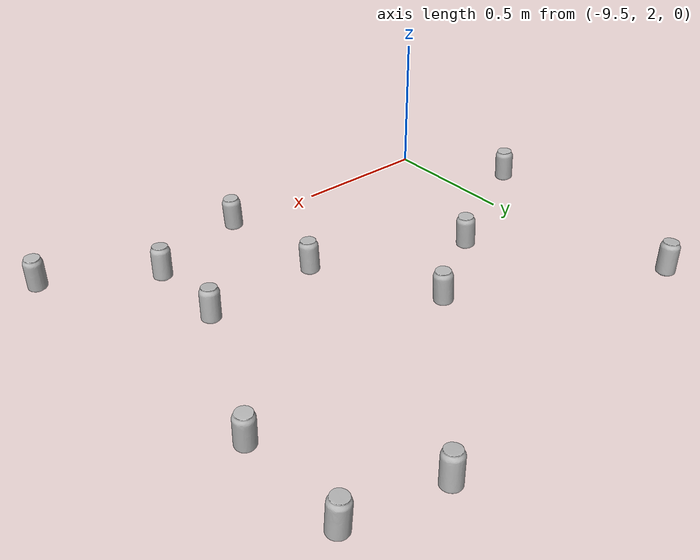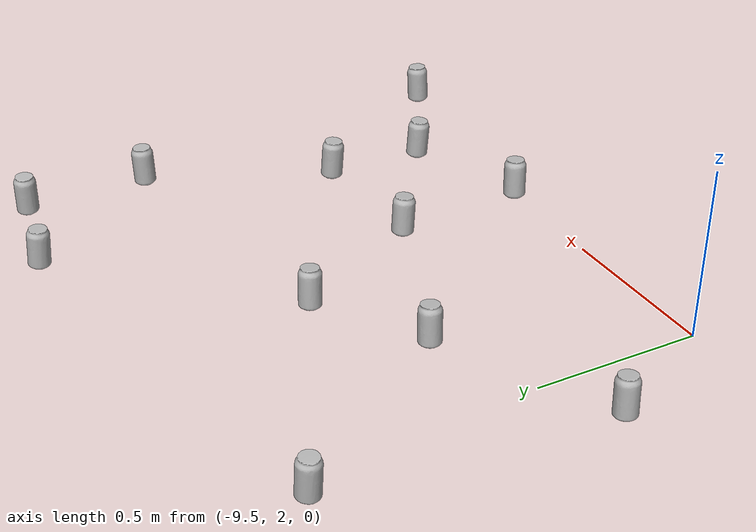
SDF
<sdf version="1.6">
 <world name="default">
  <model name="coke_can20">
   <link name="link">
    <inertial>
     <pose>0 0 0.06 0 -0 0</pose>
     <mass>0.39</mass>
     <inertia>
      <ixx>0.00055575</ixx>
      <ixy>0</ixy>
      <ixz>0</ixz>
      <iyy>0.00055575</iyy>
      <iyz>0</iyz>
      <izz>0.0001755</izz>
     </inertia>
    </inertial>
    <collision name="collision">
     <pose>0.003937 0.004724 -0.18 0 -0 0</pose>
     <geometry><mesh><uri>model://coke_can/meshes/coke_can.dae</uri></mesh></geometry>
     <surface>
      <friction><ode><mu>1</mu><mu2>1</mu2></ode></friction>
      <contact>
       <ode><kp>1e+07</kp><kd>1</kd><min_depth>0.001</min_depth><max_vel>0.1</max_vel></ode>
       <collide_bitmask>256</collide_bitmask>
      </contact>
     </surface>
    </collision>
    <visual name="visual">
     <pose>0.003937 0.004724 -0.18 0 -0 0</pose>
     <geometry><mesh><uri>model://coke_can/meshes/coke_can.dae</uri></mesh></geometry>
    </visual>
   </link>
   <pose>-7.91158 1.9156 -0.002658 -0.055084 0.007762 -0.558571</pose>
  </model>
  <model name="coke_can177">
   <link name="link">
    <inertial>
     <pose>0 0 0.06 0 -0 0</pose>
     <mass>0.39</mass>
     <inertia>
      <ixx>0.00055575</ixx>
      <ixy>0</ixy>
      <ixz>0</ixz>
      <iyy>0.00055575</iyy>
      <iyz>0</iyz>
      <izz>0.0001755</izz>
     </inertia>
    </inertial>
    <collision name="collision">
     <pose>0.003937 0.004724 -0.18 0 -0 0</pose>
     <geometry><mesh><uri>model://coke_can/meshes/coke_can.dae</uri></mesh></geometry>
     <surface>
      <friction><ode><mu>1</mu><mu2>1</mu2></ode></friction>
      <contact>
       <ode><kp>1e+07</kp><kd>1</kd><min_depth>0.001</min_depth><max_vel>0.1</max_vel></ode>
       <collide_bitmask>256</collide_bitmask>
      </contact>
     </surface>
    </collision>
    <visual name="visual">
     <pose>0.003937 0.004724 -0.18 0 -0 0</pose>
     <geometry><mesh><uri>model://coke_can/meshes/coke_can.dae</uri></mesh></geometry>
    </visual>
   </link>
   <pose>-8.34661 3.42985 -0.002659 -0.055087 0.007758 2.46031</pose>
  </model>
  <model name="coke_can300">
   <link name="link">
    <inertial>
     <pose>0 0 0.06 0 -0 0</pose>
     <mass>0.39</mass>
     <inertia>
      <ixx>0.00055575</ixx>
      <ixy>0</ixy>
      <ixz>0</ixz>
      <iyy>0.00055575</iyy>
      <iyz>0</iyz>
      <izz>0.0001755</izz>
     </inertia>
    </inertial>
    <collision name="collision">
     <pose>0.003937 0.004724 -0.18 0 -0 0</pose>
     <geometry><mesh><uri>model://coke_can/meshes/coke_can.dae</uri></mesh></geometry>
     <surface>
      <friction><ode><mu>1</mu><mu2>1</mu2></ode></friction>
      <contact>
       <ode><kp>1e+07</kp><kd>1</kd><min_depth>0.001</min_depth><max_vel>0.1</max_vel></ode>
       <collide_bitmask>256</collide_bitmask>
      </contact>
     </surface>
    </collision>
    <visual name="visual">
     <pose>0.003937 0.004724 -0.18 0 -0 0</pose>
     <geometry><mesh><uri>model://coke_can/meshes/coke_can.dae</uri></mesh></geometry>
    </visual>
   </link>
   <pose>-9.69604 2.37278 -0.002659 -0.055118 0.007738 -1.53069</pose>
  </model>
  <model name="coke_can321">
   <link name="link">
    <inertial>
     <pose>0 0 0.06 0 -0 0</pose>
     <mass>0.39</mass>
     <inertia>
      <ixx>0.00055575</ixx>
      <ixy>0</ixy>
      <ixz>0</ixz>
      <iyy>0.00055575</iyy>
      <iyz>0</iyz>
      <izz>0.0001755</izz>
     </inertia>
    </inertial>
    <collision name="collision">
     <pose>0.003937 0.004724 -0.18 0 -0 0</pose>
     <geometry><mesh><uri>model://coke_can/meshes/coke_can.dae</uri></mesh></geometry>
     <surface>
      <friction><ode><mu>1</mu><mu2>1</mu2></ode></friction>
      <contact>
       <ode><kp>1e+07</kp><kd>1</kd><min_depth>0.001</min_depth><max_vel>0.1</max_vel></ode>
       <collide_bitmask>256</collide_bitmask>
      </contact>
     </surface>
    </collision>
    <visual name="visual">
     <pose>0.003937 0.004724 -0.18 0 -0 0</pose>
     <geometry><mesh><uri>model://coke_can/meshes/coke_can.dae</uri></mesh></geometry>
    </visual>
   </link>
   <pose>-8.26214 2.43891 -0.002659 -0.055086 0.007759 2.76838</pose>
  </model>
  <model name="coke_can361">
   <link name="link">
    <inertial>
     <pose>0 0 0.06 0 -0 0</pose>
     <mass>0.39</mass>
     <inertia>
      <ixx>0.00055575</ixx>
      <ixy>0</ixy>
      <ixz>0</ixz>
      <iyy>0.00055575</iyy>
      <iyz>0</iyz>
      <izz>0.0001755</izz>
     </inertia>
    </inertial>
    <collision name="collision">
     <pose>0.003937 0.004724 -0.18 0 -0 0</pose>
     <geometry><mesh><uri>model://coke_can/meshes/coke_can.dae</uri></mesh></geometry>
     <surface>
      <friction><ode><mu>1</mu><mu2>1</mu2></ode></friction>
      <contact>
       <ode><kp>1e+07</kp><kd>1</kd><min_depth>0.001</min_depth><max_vel>0.1</max_vel></ode>
       <collide_bitmask>256</collide_bitmask>
      </contact>
     </surface>
    </collision>
    <visual name="visual">
     <pose>0.003937 0.004724 -0.18 0 -0 0</pose>
     <geometry><mesh><uri>model://coke_can/meshes/coke_can.dae</uri></mesh></geometry>
    </visual>
   </link>
   <pose>-8.03239 3.36158 -0.002659 -0.055095 0.007753 1.1431</pose>
  </model>
  <model name="coke_can402">
   <link name="link">
    <inertial>
     <pose>0 0 0.06 0 -0 0</pose>
     <mass>0.39</mass>
     <inertia>
      <ixx>0.00055575</ixx>
      <ixy>0</ixy>
      <ixz>0</ixz>
      <iyy>0.00055575</iyy>
      <iyz>0</iyz>
      <izz>0.0001755</izz>
     </inertia>
    </inertial>
    <collision name="collision">
     <pose>0.003937 0.004724 -0.18 0 -0 0</pose>
     <geometry><mesh><uri>model://coke_can/meshes/coke_can.dae</uri></mesh></geometry>
     <surface>
      <friction><ode><mu>1</mu><mu2>1</mu2></ode></friction>
      <contact>
       <ode><kp>1e+07</kp><kd>1</kd><min_depth>0.001</min_depth><max_vel>0.1</max_vel></ode>
       <collide_bitmask>256</collide_bitmask>
      </contact>
     </surface>
    </collision>
    <visual name="visual">
     <pose>0.003937 0.004724 -0.18 0 -0 0</pose>
     <geometry><mesh><uri>model://coke_can/meshes/coke_can.dae</uri></mesh></geometry>
    </visual>
   </link>
   <pose>-8.89761 2.83939 -0.002659 -0.055096 0.007752 -1.85753</pose>
  </model>
  <model name="coke_can521">
   <link name="link">
    <inertial>
     <pose>0 0 0.06 0 -0 0</pose>
     <mass>0.39</mass>
     <inertia>
      <ixx>0.00055575</ixx>
      <ixy>0</ixy>
      <ixz>0</ixz>
      <iyy>0.00055575</iyy>
      <iyz>0</iyz>
      <izz>0.0001755</izz>
     </inertia>
    </inertial>
    <collision name="collision">
     <pose>0.003937 0.004724 -0.18 0 -0 0</pose>
     <geometry><mesh><uri>model://coke_can/meshes/coke_can.dae</uri></mesh></geometry>
     <surface>
      <friction><ode><mu>1</mu><mu2>1</mu2></ode></friction>
      <contact>
       <ode><kp>1e+07</kp><kd>1</kd><min_depth>0.001</min_depth><max_vel>0.1</max_vel></ode>
       <collide_bitmask>256</collide_bitmask>
      </contact>
     </surface>
    </collision>
    <visual name="visual">
     <pose>0.003937 0.004724 -0.18 0 -0 0</pose>
     <geometry><mesh><uri>model://coke_can/meshes/coke_can.dae</uri></mesh></geometry>
    </visual>
   </link>
   <pose>-8.26542 2.12894 -0.002659 -0.05509 0.007756 2.85748</pose>
  </model>
  <model name="coke_can639">
   <link name="link">
    <inertial>
     <pose>0 0 0.06 0 -0 0</pose>
     <mass>0.39</mass>
     <inertia>
      <ixx>0.00055575</ixx>
      <ixy>0</ixy>
      <ixz>0</ixz>
      <iyy>0.00055575</iyy>
      <iyz>0</iyz>
      <izz>0.0001755</izz>
     </inertia>
    </inertial>
    <collision name="collision">
     <pose>0.003937 0.004724 -0.18 0 -0 0</pose>
     <geometry><mesh><uri>model://coke_can/meshes/coke_can.dae</uri></mesh></geometry>
     <surface>
      <friction><ode><mu>1</mu><mu2>1</mu2></ode></friction>
      <contact>
       <ode><kp>1e+07</kp><kd>1</kd><min_depth>0.001</min_depth><max_vel>0.1</max_vel></ode>
       <collide_bitmask>256</collide_bitmask>
      </contact>
     </surface>
    </collision>
    <visual name="visual">
     <pose>0.003937 0.004724 -0.18 0 -0 0</pose>
     <geometry><mesh><uri>model://coke_can/meshes/coke_can.dae</uri></mesh></geometry>
    </visual>
   </link>
   <pose>-9.20331 2.63984 -0.002659 -0.055124 0.007735 -1.48464</pose>
  </model>
  <model name="coke_can643">
   <link name="link">
    <inertial>
     <pose>0 0 0.06 0 -0 0</pose>
     <mass>0.39</mass>
     <inertia>
      <ixx>0.00055575</ixx>
      <ixy>0</ixy>
      <ixz>0</ixz>
      <iyy>0.00055575</iyy>
      <iyz>0</iyz>
      <izz>0.0001755</izz>
     </inertia>
    </inertial>
    <collision name="collision">
     <pose>0.003937 0.004724 -0.18 0 -0 0</pose>
     <geometry><mesh><uri>model://coke_can/meshes/coke_can.dae</uri></mesh></geometry>
     <surface>
      <friction><ode><mu>1</mu><mu2>1</mu2></ode></friction>
      <contact>
       <ode><kp>1e+07</kp><kd>1</kd><min_depth>0.001</min_depth><max_vel>0.1</max_vel></ode>
       <collide_bitmask>256</collide_bitmask>
      </contact>
     </surface>
    </collision>
    <visual name="visual">
     <pose>0.003937 0.004724 -0.18 0 -0 0</pose>
     <geometry><mesh><uri>model://coke_can/meshes/coke_can.dae</uri></mesh></geometry>
    </visual>
   </link>
   <pose>-8.67409 2.41723 -0.002659 -0.055119 0.007738 -2.49706</pose>
  </model>
  <model name="coke_can684">
   <link name="link">
    <inertial>
     <pose>0 0 0.06 0 -0 0</pose>
     <mass>0.39</mass>
     <inertia>
      <ixx>0.00055575</ixx>
      <ixy>0</ixy>
      <ixz>0</ixz>
      <iyy>0.00055575</iyy>
      <iyz>0</iyz>
      <izz>0.0001755</izz>
     </inertia>
    </inertial>
    <collision name="collision">
     <pose>0.003937 0.004724 -0.18 0 -0 0</pose>
     <geometry><mesh><uri>model://coke_can/meshes/coke_can.dae</uri></mesh></geometry>
     <surface>
      <friction><ode><mu>1</mu><mu2>1</mu2></ode></friction>
      <contact>
       <ode><kp>1e+07</kp><kd>1</kd><min_depth>0.001</min_depth><max_vel>0.1</max_vel></ode>
       <collide_bitmask>256</collide_bitmask>
      </contact>
     </surface>
    </collision>
    <visual name="visual">
     <pose>0.003937 0.004724 -0.18 0 -0 0</pose>
     <geometry><mesh><uri>model://coke_can/meshes/coke_can.dae</uri></mesh></geometry>
    </visual>
   </link>
   <pose>-8.63839 1.99795 -0.002659 -0.055114 0.007739 -1.57114</pose>
  </model>
  <model name="coke_can712">
   <link name="link">
    <inertial>
     <pose>0 0 0.06 0 -0 0</pose>
     <mass>0.39</mass>
     <inertia>
      <ixx>0.00055575</ixx>
      <ixy>0</ixy>
      <ixz>0</ixz>
      <iyy>0.00055575</iyy>
      <iyz>0</iyz>
      <izz>0.0001755</izz>
     </inertia>
    </inertial>
    <collision name="collision">
     <pose>0.003937 0.004724 -0.18 0 -0 0</pose>
     <geometry><mesh><uri>model://coke_can/meshes/coke_can.dae</uri></mesh></geometry>
     <surface>
      <friction><ode><mu>1</mu><mu2>1</mu2></ode></friction>
      <contact>
       <ode><kp>1e+07</kp><kd>1</kd><min_depth>0.001</min_depth><max_vel>0.1</max_vel></ode>
       <collide_bitmask>256</collide_bitmask>
      </contact>
     </surface>
    </collision>
    <visual name="visual">
     <pose>0.003937 0.004724 -0.18 0 -0 0</pose>
     <geometry><mesh><uri>model://coke_can/meshes/coke_can.dae</uri></mesh></geometry>
    </visual>
   </link>
   <pose>-8.02727 2.97694 -0.002659 -0.055098 0.007751 -0.176803</pose>
  </model>
  <model name="coke_can966">
   <link name="link">
    <inertial>
     <pose>0 0 0.06 0 -0 0</pose>
     <mass>0.39</mass>
     <inertia>
      <ixx>0.00055575</ixx>
      <ixy>0</ixy>
      <ixz>0</ixz>
      <iyy>0.00055575</iyy>
      <iyz>0</iyz>
      <izz>0.0001755</izz>
     </inertia>
    </inertial>
    <collision name="collision">
     <pose>0.003937 0.004724 -0.18 0 -0 0</pose>
     <geometry><mesh><uri>model://coke_can/meshes/coke_can.dae</uri></mesh></geometry>
     <surface>
      <friction><ode><mu>1</mu><mu2>1</mu2></ode></friction>
      <contact>
       <ode><kp>1e+07</kp><kd>1</kd><min_depth>0.001</min_depth><max_vel>0.1</max_vel></ode>
       <collide_bitmask>256</collide_bitmask>
      </contact>
     </surface>
    </collision>
    <visual name="visual">
     <pose>0.003937 0.004724 -0.18 0 -0 0</pose>
     <geometry><mesh><uri>model://coke_can/meshes/coke_can.dae</uri></mesh></geometry>
    </visual>
   </link>
   <pose>-9.60031 3.20513 -0.002659 -0.055132 0.007727 1.87227</pose>
  </model>
 </world>
</sdf>
